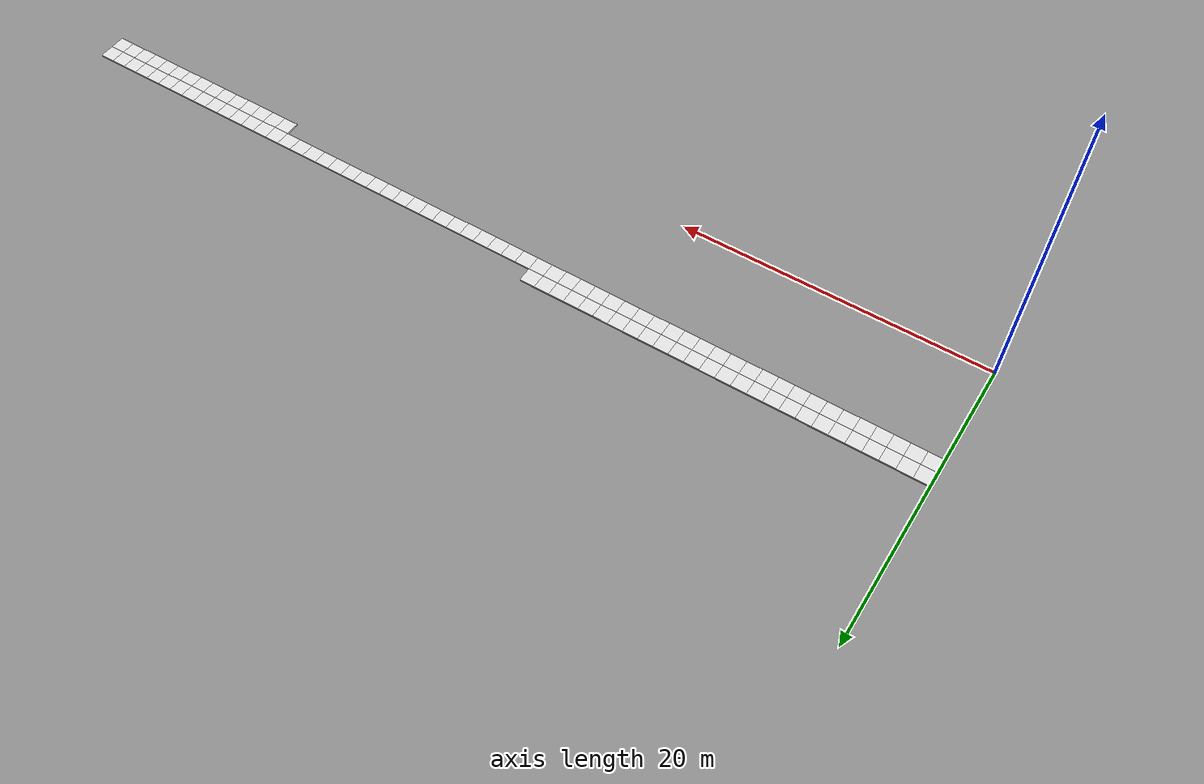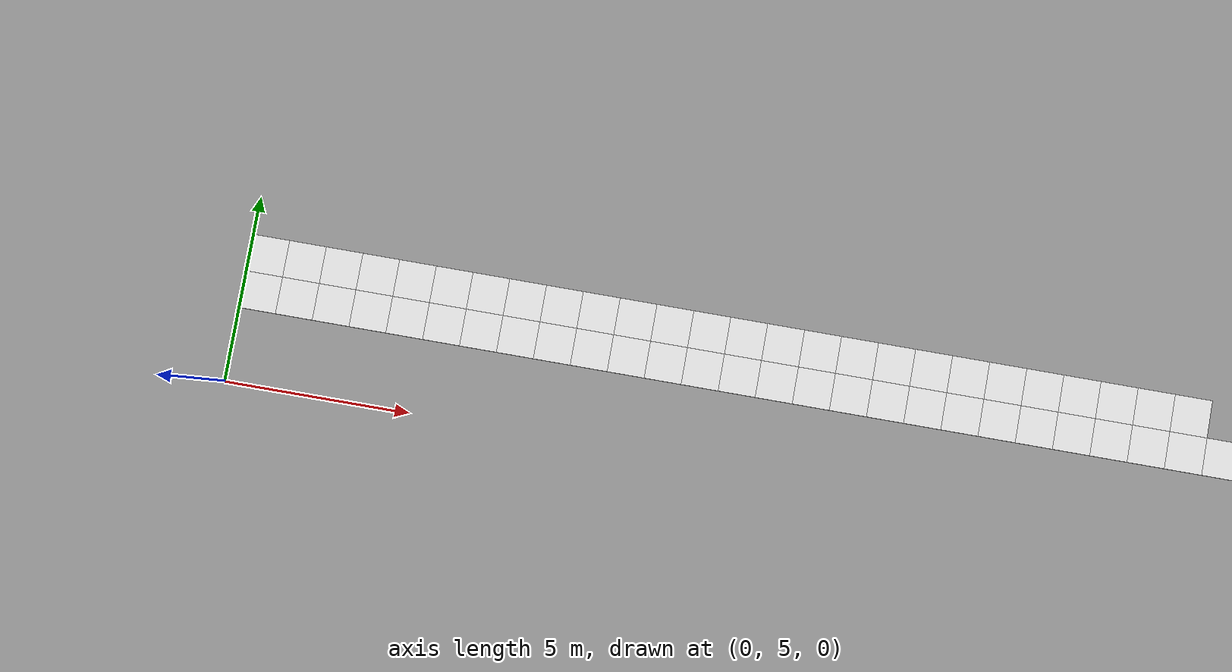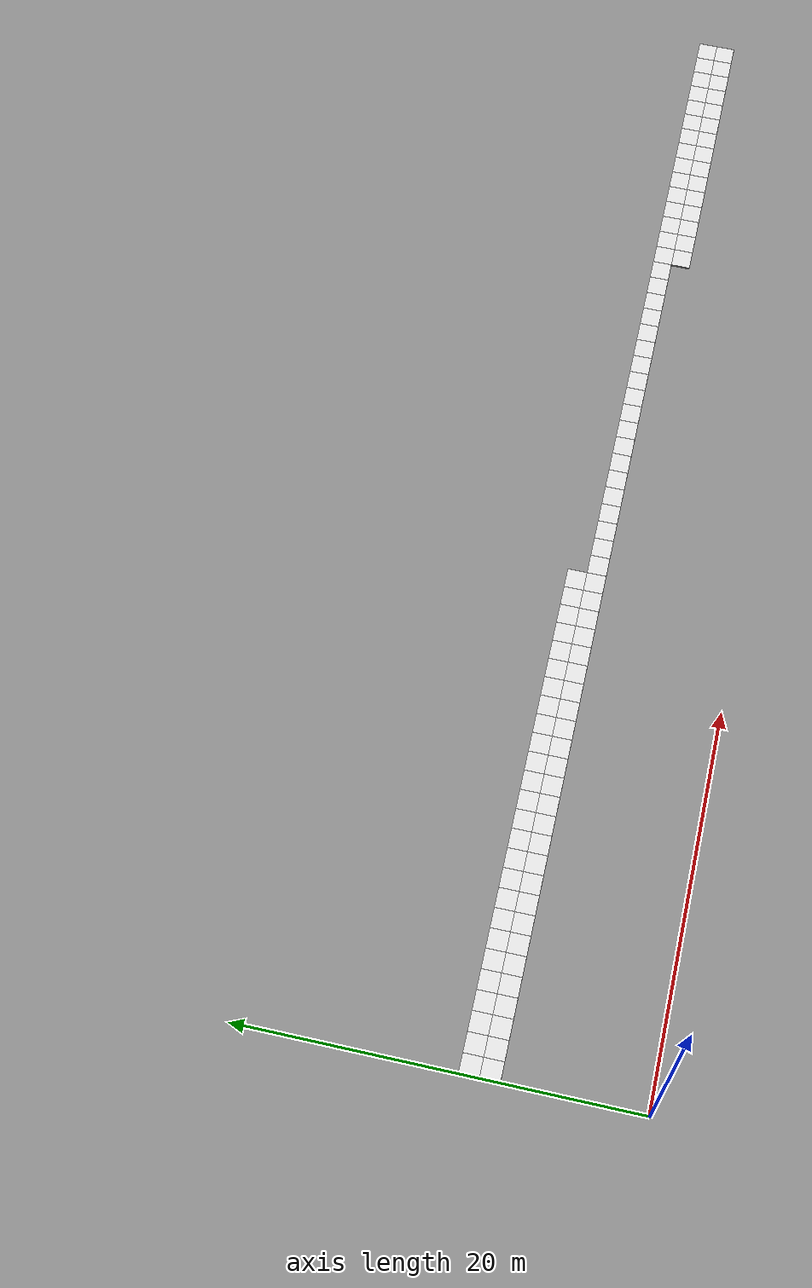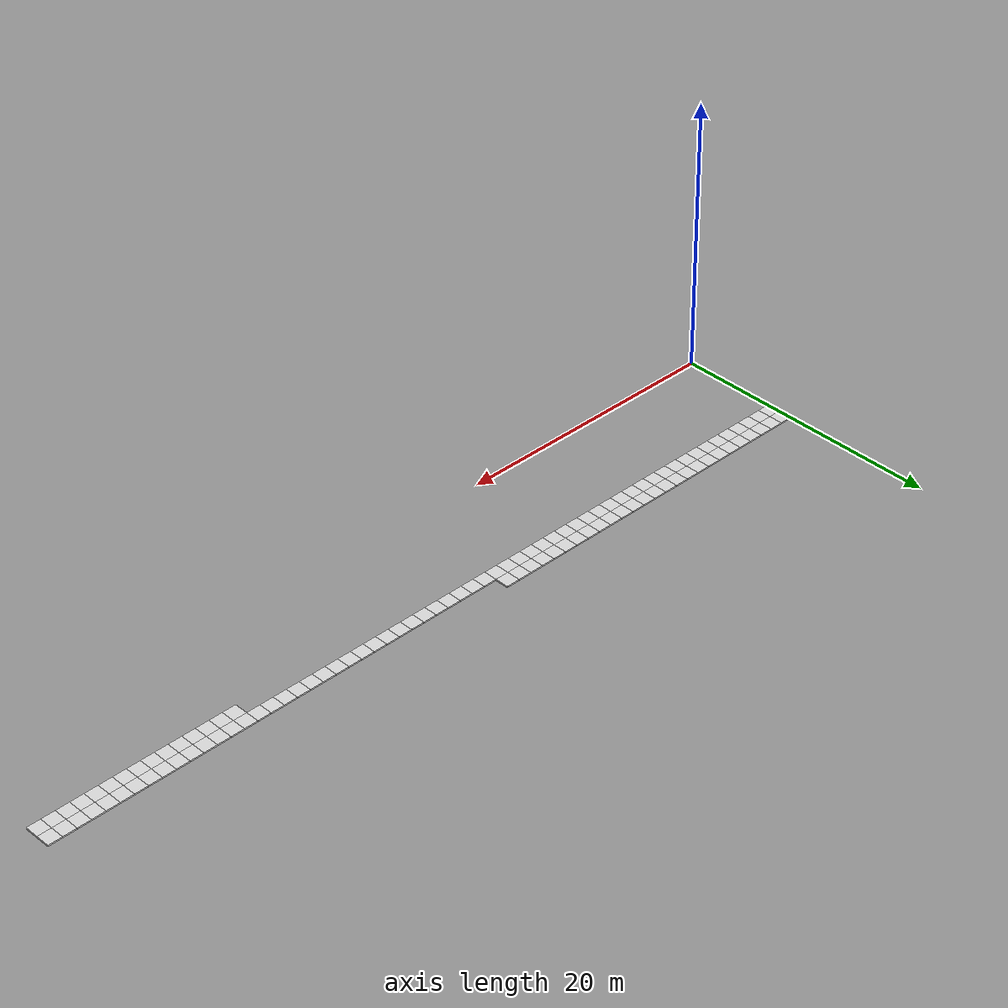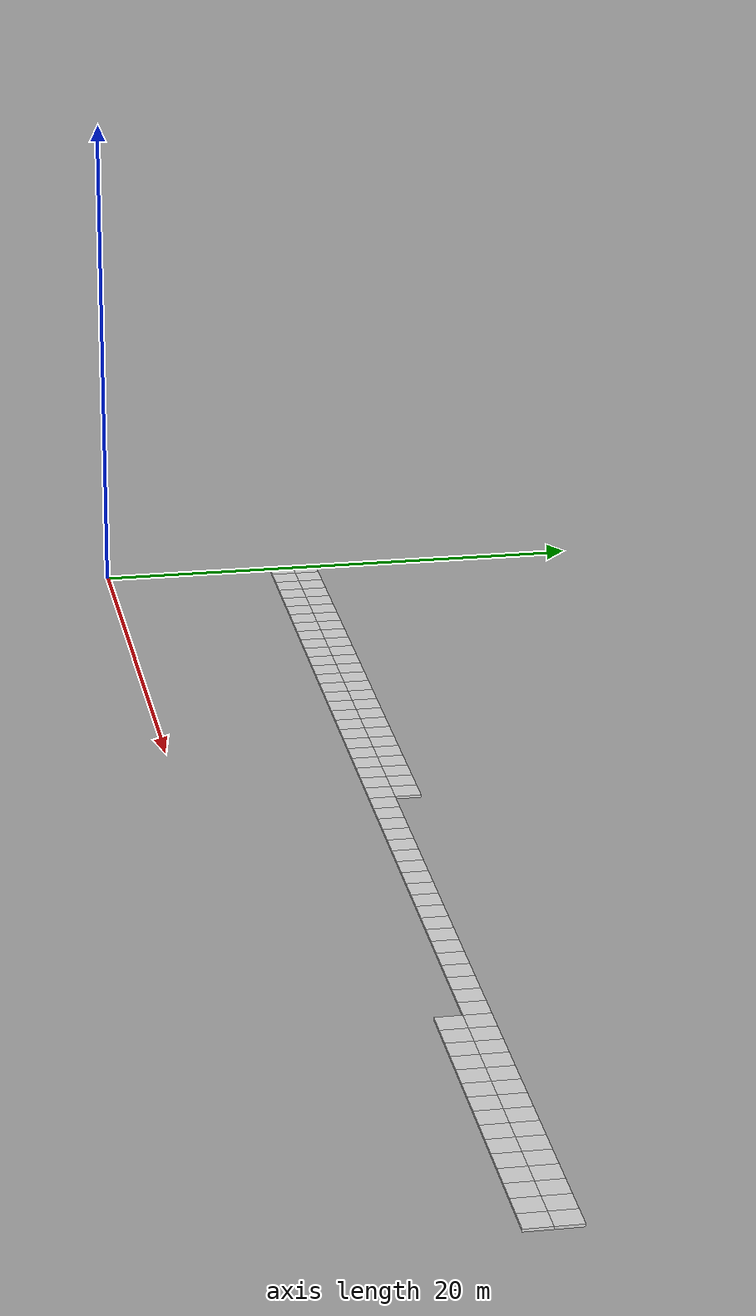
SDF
<sdf version="1.6">
 <world name="grid_world">
  <model name="cell_45_6">
   <static>true</static>
   <link name="link">
    <collision name="collision"><geometry><box><size>1 1 0.1</size></box></geometry></collision>
    <visual name="visual">
     <geometry><box><size>1 1 0.1</size></box></geometry>
     <material>
      <script><uri>file://media/materials/scripts/gazebo.material</uri><name>Gazebo/White</name></script>
     </material>
    </visual>
    <pose>45.5 6.5 0.05 0 0 0</pose>
   </link>
  </model>
  <model name="cell_46_6">
   <static>true</static>
   <link name="link">
    <collision name="collision"><geometry><box><size>1 1 0.1</size></box></geometry></collision>
    <visual name="visual">
     <geometry><box><size>1 1 0.1</size></box></geometry>
     <material>
      <script><uri>file://media/materials/scripts/gazebo.material</uri><name>Gazebo/White</name></script>
     </material>
    </visual>
    <pose>46.5 6.5 0.05 0 0 0</pose>
   </link>
  </model>
  <model name="cell_47_6">
   <static>true</static>
   <link name="link">
    <collision name="collision"><geometry><box><size>1 1 0.1</size></box></geometry></collision>
    <visual name="visual">
     <geometry><box><size>1 1 0.1</size></box></geometry>
     <material>
      <script><uri>file://media/materials/scripts/gazebo.material</uri><name>Gazebo/White</name></script>
     </material>
    </visual>
    <pose>47.5 6.5 0.05 0 0 0</pose>
   </link>
  </model>
  <model name="cell_48_6">
   <static>true</static>
   <link name="link">
    <collision name="collision"><geometry><box><size>1 1 0.1</size></box></geometry></collision>
    <visual name="visual">
     <geometry><box><size>1 1 0.1</size></box></geometry>
     <material>
      <script><uri>file://media/materials/scripts/gazebo.material</uri><name>Gazebo/White</name></script>
     </material>
    </visual>
    <pose>48.5 6.5 0.05 0 0 0</pose>
   </link>
  </model>
  <model name="cell_49_6">
   <static>true</static>
   <link name="link">
    <collision name="collision"><geometry><box><size>1 1 0.1</size></box></geometry></collision>
    <visual name="visual">
     <geometry><box><size>1 1 0.1</size></box></geometry>
     <material>
      <script><uri>file://media/materials/scripts/gazebo.material</uri><name>Gazebo/White</name></script>
     </material>
    </visual>
    <pose>49.5 6.5 0.05 0 0 0</pose>
   </link>
  </model>
  <model name="cell_50_6">
   <static>true</static>
   <link name="link">
    <collision name="collision"><geometry><box><size>1 1 0.1</size></box></geometry></collision>
    <visual name="visual">
     <geometry><box><size>1 1 0.1</size></box></geometry>
     <material>
      <script><uri>file://media/materials/scripts/gazebo.material</uri><name>Gazebo/White</name></script>
     </material>
    </visual>
    <pose>50.5 6.5 0.05 0 0 0</pose>
   </link>
  </model>
  <model name="cell_51_6">
   <static>true</static>
   <link name="link">
    <collision name="collision"><geometry><box><size>1 1 0.1</size></box></geometry></collision>
    <visual name="visual">
     <geometry><box><size>1 1 0.1</size></box></geometry>
     <material>
      <script><uri>file://media/materials/scripts/gazebo.material</uri><name>Gazebo/White</name></script>
     </material>
    </visual>
    <pose>51.5 6.5 0.05 0 0 0</pose>
   </link>
  </model>
  <model name="cell_52_6">
   <static>true</static>
   <link name="link">
    <collision name="collision"><geometry><box><size>1 1 0.1</size></box></geometry></collision>
    <visual name="visual">
     <geometry><box><size>1 1 0.1</size></box></geometry>
     <material>
      <script><uri>file://media/materials/scripts/gazebo.material</uri><name>Gazebo/White</name></script>
     </material>
    </visual>
    <pose>52.5 6.5 0.05 0 0 0</pose>
   </link>
  </model>
  <model name="cell_53_6">
   <static>true</static>
   <link name="link">
    <collision name="collision"><geometry><box><size>1 1 0.1</size></box></geometry></collision>
    <visual name="visual">
     <geometry><box><size>1 1 0.1</size></box></geometry>
     <material>
      <script><uri>file://media/materials/scripts/gazebo.material</uri><name>Gazebo/White</name></script>
     </material>
    </visual>
    <pose>53.5 6.5 0.05 0 0 0</pose>
   </link>
  </model>
  <model name="cell_54_6">
   <static>true</static>
   <link name="link">
    <collision name="collision"><geometry><box><size>1 1 0.1</size></box></geometry></collision>
    <visual name="visual">
     <geometry><box><size>1 1 0.1</size></box></geometry>
     <material>
      <script><uri>file://media/materials/scripts/gazebo.material</uri><name>Gazebo/White</name></script>
     </material>
    </visual>
    <pose>54.5 6.5 0.05 0 0 0</pose>
   </link>
  </model>
  <model name="cell_55_6">
   <static>true</static>
   <link name="link">
    <collision name="collision"><geometry><box><size>1 1 0.1</size></box></geometry></collision>
    <visual name="visual">
     <geometry><box><size>1 1 0.1</size></box></geometry>
     <material>
      <script><uri>file://media/materials/scripts/gazebo.material</uri><name>Gazebo/White</name></script>
     </material>
    </visual>
    <pose>55.5 6.5 0.05 0 0 0</pose>
   </link>
  </model>
  <model name="cell_56_6">
   <static>true</static>
   <link name="link">
    <collision name="collision"><geometry><box><size>1 1 0.1</size></box></geometry></collision>
    <visual name="visual">
     <geometry><box><size>1 1 0.1</size></box></geometry>
     <material>
      <script><uri>file://media/materials/scripts/gazebo.material</uri><name>Gazebo/White</name></script>
     </material>
    </visual>
    <pose>56.5 6.5 0.05 0 0 0</pose>
   </link>
  </model>
  <model name="cell_57_6">
   <static>true</static>
   <link name="link">
    <collision name="collision"><geometry><box><size>1 1 0.1</size></box></geometry></collision>
    <visual name="visual">
     <geometry><box><size>1 1 0.1</size></box></geometry>
     <material>
      <script><uri>file://media/materials/scripts/gazebo.material</uri><name>Gazebo/White</name></script>
     </material>
    </visual>
    <pose>57.5 6.5 0.05 0 0 0</pose>
   </link>
  </model>
  <model name="cell_58_6">
   <static>true</static>
   <link name="link">
    <collision name="collision"><geometry><box><size>1 1 0.1</size></box></geometry></collision>
    <visual name="visual">
     <geometry><box><size>1 1 0.1</size></box></geometry>
     <material>
      <script><uri>file://media/materials/scripts/gazebo.material</uri><name>Gazebo/White</name></script>
     </material>
    </visual>
    <pose>58.5 6.5 0.05 0 0 0</pose>
   </link>
  </model>
  <model name="cell_59_6">
   <static>true</static>
   <link name="link">
    <collision name="collision"><geometry><box><size>1 1 0.1</size></box></geometry></collision>
    <visual name="visual">
     <geometry><box><size>1 1 0.1</size></box></geometry>
     <material>
      <script><uri>file://media/materials/scripts/gazebo.material</uri><name>Gazebo/White</name></script>
     </material>
    </visual>
    <pose>59.5 6.5 0.05 0 0 0</pose>
   </link>
  </model>
  <model name="cell_0_7">
   <static>true</static>
   <link name="link">
    <collision name="collision"><geometry><box><size>1 1 0.1</size></box></geometry></collision>
    <visual name="visual">
     <geometry><box><size>1 1 0.1</size></box></geometry>
     <material>
      <script><uri>file://media/materials/scripts/gazebo.material</uri><name>Gazebo/White</name></script>
     </material>
    </visual>
    <pose>0.5 7.5 0.05 0 0 0</pose>
   </link>
  </model>
  <model name="cell_1_7">
   <static>true</static>
   <link name="link">
    <collision name="collision"><geometry><box><size>1 1 0.1</size></box></geometry></collision>
    <visual name="visual">
     <geometry><box><size>1 1 0.1</size></box></geometry>
     <material>
      <script><uri>file://media/materials/scripts/gazebo.material</uri><name>Gazebo/White</name></script>
     </material>
    </visual>
    <pose>1.5 7.5 0.05 0 0 0</pose>
   </link>
  </model>
  <model name="cell_2_7">
   <static>true</static>
   <link name="link">
    <collision name="collision"><geometry><box><size>1 1 0.1</size></box></geometry></collision>
    <visual name="visual">
     <geometry><box><size>1 1 0.1</size></box></geometry>
     <material>
      <script><uri>file://media/materials/scripts/gazebo.material</uri><name>Gazebo/White</name></script>
     </material>
    </visual>
    <pose>2.5 7.5 0.05 0 0 0</pose>
   </link>
  </model>
  <model name="cell_3_7">
   <static>true</static>
   <link name="link">
    <collision name="collision"><geometry><box><size>1 1 0.1</size></box></geometry></collision>
    <visual name="visual">
     <geometry><box><size>1 1 0.1</size></box></geometry>
     <material>
      <script><uri>file://media/materials/scripts/gazebo.material</uri><name>Gazebo/White</name></script>
     </material>
    </visual>
    <pose>3.5 7.5 0.05 0 0 0</pose>
   </link>
  </model>
  <model name="cell_4_7">
   <static>true</static>
   <link name="link">
    <collision name="collision"><geometry><box><size>1 1 0.1</size></box></geometry></collision>
    <visual name="visual">
     <geometry><box><size>1 1 0.1</size></box></geometry>
     <material>
      <script><uri>file://media/materials/scripts/gazebo.material</uri><name>Gazebo/White</name></script>
     </material>
    </visual>
    <pose>4.5 7.5 0.05 0 0 0</pose>
   </link>
  </model>
  <model name="cell_5_7">
   <static>true</static>
   <link name="link">
    <collision name="collision"><geometry><box><size>1 1 0.1</size></box></geometry></collision>
    <visual name="visual">
     <geometry><box><size>1 1 0.1</size></box></geometry>
     <material>
      <script><uri>file://media/materials/scripts/gazebo.material</uri><name>Gazebo/White</name></script>
     </material>
    </visual>
    <pose>5.5 7.5 0.05 0 0 0</pose>
   </link>
  </model>
  <model name="cell_6_7">
   <static>true</static>
   <link name="link">
    <collision name="collision"><geometry><box><size>1 1 0.1</size></box></geometry></collision>
    <visual name="visual">
     <geometry><box><size>1 1 0.1</size></box></geometry>
     <material>
      <script><uri>file://media/materials/scripts/gazebo.material</uri><name>Gazebo/White</name></script>
     </material>
    </visual>
    <pose>6.5 7.5 0.05 0 0 0</pose>
   </link>
  </model>
  <model name="cell_7_7">
   <static>true</static>
   <link name="link">
    <collision name="collision"><geometry><box><size>1 1 0.1</size></box></geometry></collision>
    <visual name="visual">
     <geometry><box><size>1 1 0.1</size></box></geometry>
     <material>
      <script><uri>file://media/materials/scripts/gazebo.material</uri><name>Gazebo/White</name></script>
     </material>
    </visual>
    <pose>7.5 7.5 0.05 0 0 0</pose>
   </link>
  </model>
  <model name="cell_8_7">
   <static>true</static>
   <link name="link">
    <collision name="collision"><geometry><box><size>1 1 0.1</size></box></geometry></collision>
    <visual name="visual">
     <geometry><box><size>1 1 0.1</size></box></geometry>
     <material>
      <script><uri>file://media/materials/scripts/gazebo.material</uri><name>Gazebo/White</name></script>
     </material>
    </visual>
    <pose>8.5 7.5 0.05 0 0 0</pose>
   </link>
  </model>
  <model name="cell_9_7">
   <static>true</static>
   <link name="link">
    <collision name="collision"><geometry><box><size>1 1 0.1</size></box></geometry></collision>
    <visual name="visual">
     <geometry><box><size>1 1 0.1</size></box></geometry>
     <material>
      <script><uri>file://media/materials/scripts/gazebo.material</uri><name>Gazebo/White</name></script>
     </material>
    </visual>
    <pose>9.5 7.5 0.05 0 0 0</pose>
   </link>
  </model>
  <model name="cell_10_7">
   <static>true</static>
   <link name="link">
    <collision name="collision"><geometry><box><size>1 1 0.1</size></box></geometry></collision>
    <visual name="visual">
     <geometry><box><size>1 1 0.1</size></box></geometry>
     <material>
      <script><uri>file://media/materials/scripts/gazebo.material</uri><name>Gazebo/White</name></script>
     </material>
    </visual>
    <pose>10.5 7.5 0.05 0 0 0</pose>
   </link>
  </model>
  <model name="cell_11_7">
   <static>true</static>
   <link name="link">
    <collision name="collision"><geometry><box><size>1 1 0.1</size></box></geometry></collision>
    <visual name="visual">
     <geometry><box><size>1 1 0.1</size></box></geometry>
     <material>
      <script><uri>file://media/materials/scripts/gazebo.material</uri><name>Gazebo/White</name></script>
     </material>
    </visual>
    <pose>11.5 7.5 0.05 0 0 0</pose>
   </link>
  </model>
  <model name="cell_12_7">
   <static>true</static>
   <link name="link">
    <collision name="collision"><geometry><box><size>1 1 0.1</size></box></geometry></collision>
    <visual name="visual">
     <geometry><box><size>1 1 0.1</size></box></geometry>
     <material>
      <script><uri>file://media/materials/scripts/gazebo.material</uri><name>Gazebo/White</name></script>
     </material>
    </visual>
    <pose>12.5 7.5 0.05 0 0 0</pose>
   </link>
  </model>
  <model name="cell_13_7">
   <static>true</static>
   <link name="link">
    <collision name="collision"><geometry><box><size>1 1 0.1</size></box></geometry></collision>
    <visual name="visual">
     <geometry><box><size>1 1 0.1</size></box></geometry>
     <material>
      <script><uri>file://media/materials/scripts/gazebo.material</uri><name>Gazebo/White</name></script>
     </material>
    </visual>
    <pose>13.5 7.5 0.05 0 0 0</pose>
   </link>
  </model>
  <model name="cell_14_7">
   <static>true</static>
   <link name="link">
    <collision name="collision"><geometry><box><size>1 1 0.1</size></box></geometry></collision>
    <visual name="visual">
     <geometry><box><size>1 1 0.1</size></box></geometry>
     <material>
      <script><uri>file://media/materials/scripts/gazebo.material</uri><name>Gazebo/White</name></script>
     </material>
    </visual>
    <pose>14.5 7.5 0.05 0 0 0</pose>
   </link>
  </model>
  <model name="cell_15_7">
   <static>true</static>
   <link name="link">
    <collision name="collision"><geometry><box><size>1 1 0.1</size></box></geometry></collision>
    <visual name="visual">
     <geometry><box><size>1 1 0.1</size></box></geometry>
     <material>
      <script><uri>file://media/materials/scripts/gazebo.material</uri><name>Gazebo/White</name></script>
     </material>
    </visual>
    <pose>15.5 7.5 0.05 0 0 0</pose>
   </link>
  </model>
  <model name="cell_16_7">
   <static>true</static>
   <link name="link">
    <collision name="collision"><geometry><box><size>1 1 0.1</size></box></geometry></collision>
    <visual name="visual">
     <geometry><box><size>1 1 0.1</size></box></geometry>
     <material>
      <script><uri>file://media/materials/scripts/gazebo.material</uri><name>Gazebo/White</name></script>
     </material>
    </visual>
    <pose>16.5 7.5 0.05 0 0 0</pose>
   </link>
  </model>
  <model name="cell_17_7">
   <static>true</static>
   <link name="link">
    <collision name="collision"><geometry><box><size>1 1 0.1</size></box></geometry></collision>
    <visual name="visual">
     <geometry><box><size>1 1 0.1</size></box></geometry>
     <material>
      <script><uri>file://media/materials/scripts/gazebo.material</uri><name>Gazebo/White</name></script>
     </material>
    </visual>
    <pose>17.5 7.5 0.05 0 0 0</pose>
   </link>
  </model>
  <model name="cell_18_7">
   <static>true</static>
   <link name="link">
    <collision name="collision"><geometry><box><size>1 1 0.1</size></box></geometry></collision>
    <visual name="visual">
     <geometry><box><size>1 1 0.1</size></box></geometry>
     <material>
      <script><uri>file://media/materials/scripts/gazebo.material</uri><name>Gazebo/White</name></script>
     </material>
    </visual>
    <pose>18.5 7.5 0.05 0 0 0</pose>
   </link>
  </model>
  <model name="cell_19_7">
   <static>true</static>
   <link name="link">
    <collision name="collision"><geometry><box><size>1 1 0.1</size></box></geometry></collision>
    <visual name="visual">
     <geometry><box><size>1 1 0.1</size></box></geometry>
     <material>
      <script><uri>file://media/materials/scripts/gazebo.material</uri><name>Gazebo/White</name></script>
     </material>
    </visual>
    <pose>19.5 7.5 0.05 0 0 0</pose>
   </link>
  </model>
  <model name="cell_20_7">
   <static>true</static>
   <link name="link">
    <collision name="collision"><geometry><box><size>1 1 0.1</size></box></geometry></collision>
    <visual name="visual">
     <geometry><box><size>1 1 0.1</size></box></geometry>
     <material>
      <script><uri>file://media/materials/scripts/gazebo.material</uri><name>Gazebo/White</name></script>
     </material>
    </visual>
    <pose>20.5 7.5 0.05 0 0 0</pose>
   </link>
  </model>
  <model name="cell_21_7">
   <static>true</static>
   <link name="link">
    <collision name="collision"><geometry><box><size>1 1 0.1</size></box></geometry></collision>
    <visual name="visual">
     <geometry><box><size>1 1 0.1</size></box></geometry>
     <material>
      <script><uri>file://media/materials/scripts/gazebo.material</uri><name>Gazebo/White</name></script>
     </material>
    </visual>
    <pose>21.5 7.5 0.05 0 0 0</pose>
   </link>
  </model>
  <model name="cell_22_7">
   <static>true</static>
   <link name="link">
    <collision name="collision"><geometry><box><size>1 1 0.1</size></box></geometry></collision>
    <visual name="visual">
     <geometry><box><size>1 1 0.1</size></box></geometry>
     <material>
      <script><uri>file://media/materials/scripts/gazebo.material</uri><name>Gazebo/White</name></script>
     </material>
    </visual>
    <pose>22.5 7.5 0.05 0 0 0</pose>
   </link>
  </model>
  <model name="cell_23_7">
   <static>true</static>
   <link name="link">
    <collision name="collision"><geometry><box><size>1 1 0.1</size></box></geometry></collision>
    <visual name="visual">
     <geometry><box><size>1 1 0.1</size></box></geometry>
     <material>
      <script><uri>file://media/materials/scripts/gazebo.material</uri><name>Gazebo/White</name></script>
     </material>
    </visual>
    <pose>23.5 7.5 0.05 0 0 0</pose>
   </link>
  </model>
  <model name="cell_24_7">
   <static>true</static>
   <link name="link">
    <collision name="collision"><geometry><box><size>1 1 0.1</size></box></geometry></collision>
    <visual name="visual">
     <geometry><box><size>1 1 0.1</size></box></geometry>
     <material>
      <script><uri>file://media/materials/scripts/gazebo.material</uri><name>Gazebo/White</name></script>
     </material>
    </visual>
    <pose>24.5 7.5 0.05 0 0 0</pose>
   </link>
  </model>
  <model name="cell_25_7">
   <static>true</static>
   <link name="link">
    <collision name="collision"><geometry><box><size>1 1 0.1</size></box></geometry></collision>
    <visual name="visual">
     <geometry><box><size>1 1 0.1</size></box></geometry>
     <material>
      <script><uri>file://media/materials/scripts/gazebo.material</uri><name>Gazebo/White</name></script>
     </material>
    </visual>
    <pose>25.5 7.5 0.05 0 0 0</pose>
   </link>
  </model>
  <model name="cell_26_7">
   <static>true</static>
   <link name="link">
    <collision name="collision"><geometry><box><size>1 1 0.1</size></box></geometry></collision>
    <visual name="visual">
     <geometry><box><size>1 1 0.1</size></box></geometry>
     <material>
      <script><uri>file://media/materials/scripts/gazebo.material</uri><name>Gazebo/White</name></script>
     </material>
    </visual>
    <pose>26.5 7.5 0.05 0 0 0</pose>
   </link>
  </model>
  <model name="cell_27_7">
   <static>true</static>
   <link name="link">
    <collision name="collision"><geometry><box><size>1 1 0.1</size></box></geometry></collision>
    <visual name="visual">
     <geometry><box><size>1 1 0.1</size></box></geometry>
     <material>
      <script><uri>file://media/materials/scripts/gazebo.material</uri><name>Gazebo/White</name></script>
     </material>
    </visual>
    <pose>27.5 7.5 0.05 0 0 0</pose>
   </link>
  </model>
  <model name="cell_28_7">
   <static>true</static>
   <link name="link">
    <collision name="collision"><geometry><box><size>1 1 0.1</size></box></geometry></collision>
    <visual name="visual">
     <geometry><box><size>1 1 0.1</size></box></geometry>
     <material>
      <script><uri>file://media/materials/scripts/gazebo.material</uri><name>Gazebo/White</name></script>
     </material>
    </visual>
    <pose>28.5 7.5 0.05 0 0 0</pose>
   </link>
  </model>
  <model name="cell_29_7">
   <static>true</static>
   <link name="link">
    <collision name="collision"><geometry><box><size>1 1 0.1</size></box></geometry></collision>
    <visual name="visual">
     <geometry><box><size>1 1 0.1</size></box></geometry>
     <material>
      <script><uri>file://media/materials/scripts/gazebo.material</uri><name>Gazebo/White</name></script>
     </material>
    </visual>
    <pose>29.5 7.5 0.05 0 0 0</pose>
   </link>
  </model>
  <model name="cell_30_7">
   <static>true</static>
   <link name="link">
    <collision name="collision"><geometry><box><size>1 1 0.1</size></box></geometry></collision>
    <visual name="visual">
     <geometry><box><size>1 1 0.1</size></box></geometry>
     <material>
      <script><uri>file://media/materials/scripts/gazebo.material</uri><name>Gazebo/White</name></script>
     </material>
    </visual>
    <pose>30.5 7.5 0.05 0 0 0</pose>
   </link>
  </model>
  <model name="cell_31_7">
   <static>true</static>
   <link name="link">
    <collision name="collision"><geometry><box><size>1 1 0.1</size></box></geometry></collision>
    <visual name="visual">
     <geometry><box><size>1 1 0.1</size></box></geometry>
     <material>
      <script><uri>file://media/materials/scripts/gazebo.material</uri><name>Gazebo/White</name></script>
     </material>
    </visual>
    <pose>31.5 7.5 0.05 0 0 0</pose>
   </link>
  </model>
  <model name="cell_32_7">
   <static>true</static>
   <link name="link">
    <collision name="collision"><geometry><box><size>1 1 0.1</size></box></geometry></collision>
    <visual name="visual">
     <geometry><box><size>1 1 0.1</size></box></geometry>
     <material>
      <script><uri>file://media/materials/scripts/gazebo.material</uri><name>Gazebo/White</name></script>
     </material>
    </visual>
    <pose>32.5 7.5 0.05 0 0 0</pose>
   </link>
  </model>
  <model name="cell_33_7">
   <static>true</static>
   <link name="link">
    <collision name="collision"><geometry><box><size>1 1 0.1</size></box></geometry></collision>
    <visual name="visual">
     <geometry><box><size>1 1 0.1</size></box></geometry>
     <material>
      <script><uri>file://media/materials/scripts/gazebo.material</uri><name>Gazebo/White</name></script>
     </material>
    </visual>
    <pose>33.5 7.5 0.05 0 0 0</pose>
   </link>
  </model>
  <model name="cell_34_7">
   <static>true</static>
   <link name="link">
    <collision name="collision"><geometry><box><size>1 1 0.1</size></box></geometry></collision>
    <visual name="visual">
     <geometry><box><size>1 1 0.1</size></box></geometry>
     <material>
      <script><uri>file://media/materials/scripts/gazebo.material</uri><name>Gazebo/White</name></script>
     </material>
    </visual>
    <pose>34.5 7.5 0.05 0 0 0</pose>
   </link>
  </model>
  <model name="cell_35_7">
   <static>true</static>
   <link name="link">
    <collision name="collision"><geometry><box><size>1 1 0.1</size></box></geometry></collision>
    <visual name="visual">
     <geometry><box><size>1 1 0.1</size></box></geometry>
     <material>
      <script><uri>file://media/materials/scripts/gazebo.material</uri><name>Gazebo/White</name></script>
     </material>
    </visual>
    <pose>35.5 7.5 0.05 0 0 0</pose>
   </link>
  </model>
  <model name="cell_36_7">
   <static>true</static>
   <link name="link">
    <collision name="collision"><geometry><box><size>1 1 0.1</size></box></geometry></collision>
    <visual name="visual">
     <geometry><box><size>1 1 0.1</size></box></geometry>
     <material>
      <script><uri>file://media/materials/scripts/gazebo.material</uri><name>Gazebo/White</name></script>
     </material>
    </visual>
    <pose>36.5 7.5 0.05 0 0 0</pose>
   </link>
  </model>
  <model name="cell_37_7">
   <static>true</static>
   <link name="link">
    <collision name="collision"><geometry><box><size>1 1 0.1</size></box></geometry></collision>
    <visual name="visual">
     <geometry><box><size>1 1 0.1</size></box></geometry>
     <material>
      <script><uri>file://media/materials/scripts/gazebo.material</uri><name>Gazebo/White</name></script>
     </material>
    </visual>
    <pose>37.5 7.5 0.05 0 0 0</pose>
   </link>
  </model>
  <model name="cell_38_7">
   <static>true</static>
   <link name="link">
    <collision name="collision"><geometry><box><size>1 1 0.1</size></box></geometry></collision>
    <visual name="visual">
     <geometry><box><size>1 1 0.1</size></box></geometry>
     <material>
      <script><uri>file://media/materials/scripts/gazebo.material</uri><name>Gazebo/White</name></script>
     </material>
    </visual>
    <pose>38.5 7.5 0.05 0 0 0</pose>
   </link>
  </model>
  <model name="cell_39_7">
   <static>true</static>
   <link name="link">
    <collision name="collision"><geometry><box><size>1 1 0.1</size></box></geometry></collision>
    <visual name="visual">
     <geometry><box><size>1 1 0.1</size></box></geometry>
     <material>
      <script><uri>file://media/materials/scripts/gazebo.material</uri><name>Gazebo/White</name></script>
     </material>
    </visual>
    <pose>39.5 7.5 0.05 0 0 0</pose>
   </link>
  </model>
  <model name="cell_40_7">
   <static>true</static>
   <link name="link">
    <collision name="collision"><geometry><box><size>1 1 0.1</size></box></geometry></collision>
    <visual name="visual">
     <geometry><box><size>1 1 0.1</size></box></geometry>
     <material>
      <script><uri>file://media/materials/scripts/gazebo.material</uri><name>Gazebo/White</name></script>
     </material>
    </visual>
    <pose>40.5 7.5 0.05 0 0 0</pose>
   </link>
  </model>
  <model name="cell_41_7">
   <static>true</static>
   <link name="link">
    <collision name="collision"><geometry><box><size>1 1 0.1</size></box></geometry></collision>
    <visual name="visual">
     <geometry><box><size>1 1 0.1</size></box></geometry>
     <material>
      <script><uri>file://media/materials/scripts/gazebo.material</uri><name>Gazebo/White</name></script>
     </material>
    </visual>
    <pose>41.5 7.5 0.05 0 0 0</pose>
   </link>
  </model>
  <model name="cell_42_7">
   <static>true</static>
   <link name="link">
    <collision name="collision"><geometry><box><size>1 1 0.1</size></box></geometry></collision>
    <visual name="visual">
     <geometry><box><size>1 1 0.1</size></box></geometry>
     <material>
      <script><uri>file://media/materials/scripts/gazebo.material</uri><name>Gazebo/White</name></script>
     </material>
    </visual>
    <pose>42.5 7.5 0.05 0 0 0</pose>
   </link>
  </model>
  <model name="cell_43_7">
   <static>true</static>
   <link name="link">
    <collision name="collision"><geometry><box><size>1 1 0.1</size></box></geometry></collision>
    <visual name="visual">
     <geometry><box><size>1 1 0.1</size></box></geometry>
     <material>
      <script><uri>file://media/materials/scripts/gazebo.material</uri><name>Gazebo/White</name></script>
     </material>
    </visual>
    <pose>43.5 7.5 0.05 0 0 0</pose>
   </link>
  </model>
  <model name="cell_44_7">
   <static>true</static>
   <link name="link">
    <collision name="collision"><geometry><box><size>1 1 0.1</size></box></geometry></collision>
    <visual name="visual">
     <geometry><box><size>1 1 0.1</size></box></geometry>
     <material>
      <script><uri>file://media/materials/scripts/gazebo.material</uri><name>Gazebo/White</name></script>
     </material>
    </visual>
    <pose>44.5 7.5 0.05 0 0 0</pose>
   </link>
  </model>
  <model name="cell_45_7">
   <static>true</static>
   <link name="link">
    <collision name="collision"><geometry><box><size>1 1 0.1</size></box></geometry></collision>
    <visual name="visual">
     <geometry><box><size>1 1 0.1</size></box></geometry>
     <material>
      <script><uri>file://media/materials/scripts/gazebo.material</uri><name>Gazebo/White</name></script>
     </material>
    </visual>
    <pose>45.5 7.5 0.05 0 0 0</pose>
   </link>
  </model>
  <model name="cell_46_7">
   <static>true</static>
   <link name="link">
    <collision name="collision"><geometry><box><size>1 1 0.1</size></box></geometry></collision>
    <visual name="visual">
     <geometry><box><size>1 1 0.1</size></box></geometry>
     <material>
      <script><uri>file://media/materials/scripts/gazebo.material</uri><name>Gazebo/White</name></script>
     </material>
    </visual>
    <pose>46.5 7.5 0.05 0 0 0</pose>
   </link>
  </model>
  <model name="cell_47_7">
   <static>true</static>
   <link name="link">
    <collision name="collision"><geometry><box><size>1 1 0.1</size></box></geometry></collision>
    <visual name="visual">
     <geometry><box><size>1 1 0.1</size></box></geometry>
     <material>
      <script><uri>file://media/materials/scripts/gazebo.material</uri><name>Gazebo/White</name></script>
     </material>
    </visual>
    <pose>47.5 7.5 0.05 0 0 0</pose>
   </link>
  </model>
  <model name="cell_48_7">
   <static>true</static>
   <link name="link">
    <collision name="collision"><geometry><box><size>1 1 0.1</size></box></geometry></collision>
    <visual name="visual">
     <geometry><box><size>1 1 0.1</size></box></geometry>
     <material>
      <script><uri>file://media/materials/scripts/gazebo.material</uri><name>Gazebo/White</name></script>
     </material>
    </visual>
    <pose>48.5 7.5 0.05 0 0 0</pose>
   </link>
  </model>
  <model name="cell_49_7">
   <static>true</static>
   <link name="link">
    <collision name="collision"><geometry><box><size>1 1 0.1</size></box></geometry></collision>
    <visual name="visual">
     <geometry><box><size>1 1 0.1</size></box></geometry>
     <material>
      <script><uri>file://media/materials/scripts/gazebo.material</uri><name>Gazebo/White</name></script>
     </material>
    </visual>
    <pose>49.5 7.5 0.05 0 0 0</pose>
   </link>
  </model>
  <model name="cell_50_7">
   <static>true</static>
   <link name="link">
    <collision name="collision"><geometry><box><size>1 1 0.1</size></box></geometry></collision>
    <visual name="visual">
     <geometry><box><size>1 1 0.1</size></box></geometry>
     <material>
      <script><uri>file://media/materials/scripts/gazebo.material</uri><name>Gazebo/White</name></script>
     </material>
    </visual>
    <pose>50.5 7.5 0.05 0 0 0</pose>
   </link>
  </model>
  <model name="cell_51_7">
   <static>true</static>
   <link name="link">
    <collision name="collision"><geometry><box><size>1 1 0.1</size></box></geometry></collision>
    <visual name="visual">
     <geometry><box><size>1 1 0.1</size></box></geometry>
     <material>
      <script><uri>file://media/materials/scripts/gazebo.material</uri><name>Gazebo/White</name></script>
     </material>
    </visual>
    <pose>51.5 7.5 0.05 0 0 0</pose>
   </link>
  </model>
  <model name="cell_52_7">
   <static>true</static>
   <link name="link">
    <collision name="collision"><geometry><box><size>1 1 0.1</size></box></geometry></collision>
    <visual name="visual">
     <geometry><box><size>1 1 0.1</size></box></geometry>
     <material>
      <script><uri>file://media/materials/scripts/gazebo.material</uri><name>Gazebo/White</name></script>
     </material>
    </visual>
    <pose>52.5 7.5 0.05 0 0 0</pose>
   </link>
  </model>
  <model name="cell_53_7">
   <static>true</static>
   <link name="link">
    <collision name="collision"><geometry><box><size>1 1 0.1</size></box></geometry></collision>
    <visual name="visual">
     <geometry><box><size>1 1 0.1</size></box></geometry>
     <material>
      <script><uri>file://media/materials/scripts/gazebo.material</uri><name>Gazebo/White</name></script>
     </material>
    </visual>
    <pose>53.5 7.5 0.05 0 0 0</pose>
   </link>
  </model>
  <model name="cell_54_7">
   <static>true</static>
   <link name="link">
    <collision name="collision"><geometry><box><size>1 1 0.1</size></box></geometry></collision>
    <visual name="visual">
     <geometry><box><size>1 1 0.1</size></box></geometry>
     <material>
      <script><uri>file://media/materials/scripts/gazebo.material</uri><name>Gazebo/White</name></script>
     </material>
    </visual>
    <pose>54.5 7.5 0.05 0 0 0</pose>
   </link>
  </model>
  <model name="cell_55_7">
   <static>true</static>
   <link name="link">
    <collision name="collision"><geometry><box><size>1 1 0.1</size></box></geometry></collision>
    <visual name="visual">
     <geometry><box><size>1 1 0.1</size></box></geometry>
     <material>
      <script><uri>file://media/materials/scripts/gazebo.material</uri><name>Gazebo/White</name></script>
     </material>
    </visual>
    <pose>55.5 7.5 0.05 0 0 0</pose>
   </link>
  </model>
  <model name="cell_56_7">
   <static>true</static>
   <link name="link">
    <collision name="collision"><geometry><box><size>1 1 0.1</size></box></geometry></collision>
    <visual name="visual">
     <geometry><box><size>1 1 0.1</size></box></geometry>
     <material>
      <script><uri>file://media/materials/scripts/gazebo.material</uri><name>Gazebo/White</name></script>
     </material>
    </visual>
    <pose>56.5 7.5 0.05 0 0 0</pose>
   </link>
  </model>
  <model name="cell_57_7">
   <static>true</static>
   <link name="link">
    <collision name="collision"><geometry><box><size>1 1 0.1</size></box></geometry></collision>
    <visual name="visual">
     <geometry><box><size>1 1 0.1</size></box></geometry>
     <material>
      <script><uri>file://media/materials/scripts/gazebo.material</uri><name>Gazebo/White</name></script>
     </material>
    </visual>
    <pose>57.5 7.5 0.05 0 0 0</pose>
   </link>
  </model>
  <model name="cell_58_7">
   <static>true</static>
   <link name="link">
    <collision name="collision"><geometry><box><size>1 1 0.1</size></box></geometry></collision>
    <visual name="visual">
     <geometry><box><size>1 1 0.1</size></box></geometry>
     <material>
      <script><uri>file://media/materials/scripts/gazebo.material</uri><name>Gazebo/White</name></script>
     </material>
    </visual>
    <pose>58.5 7.5 0.05 0 0 0</pose>
   </link>
  </model>
  <model name="cell_59_7">
   <static>true</static>
   <link name="link">
    <collision name="collision"><geometry><box><size>1 1 0.1</size></box></geometry></collision>
    <visual name="visual">
     <geometry><box><size>1 1 0.1</size></box></geometry>
     <material>
      <script><uri>file://media/materials/scripts/gazebo.material</uri><name>Gazebo/White</name></script>
     </material>
    </visual>
    <pose>59.5 7.5 0.05 0 0 0</pose>
   </link>
  </model>
  <model name="cell_0_8">
   <static>true</static>
   <link name="link">
    <collision name="collision"><geometry><box><size>1 1 0.1</size></box></geometry></collision>
    <visual name="visual">
     <geometry><box><size>1 1 0.1</size></box></geometry>
     <material>
      <script><uri>file://media/materials/scripts/gazebo.material</uri><name>Gazebo/White</name></script>
     </material>
    </visual>
    <pose>0.5 8.5 0.05 0 0 0</pose>
   </link>
  </model>
  <model name="cell_1_8">
   <static>true</static>
   <link name="link">
    <collision name="collision"><geometry><box><size>1 1 0.1</size></box></geometry></collision>
    <visual name="visual">
     <geometry><box><size>1 1 0.1</size></box></geometry>
     <material>
      <script><uri>file://media/materials/scripts/gazebo.material</uri><name>Gazebo/White</name></script>
     </material>
    </visual>
    <pose>1.5 8.5 0.05 0 0 0</pose>
   </link>
  </model>
  <model name="cell_2_8">
   <static>true</static>
   <link name="link">
    <collision name="collision"><geometry><box><size>1 1 0.1</size></box></geometry></collision>
    <visual name="visual">
     <geometry><box><size>1 1 0.1</size></box></geometry>
     <material>
      <script><uri>file://media/materials/scripts/gazebo.material</uri><name>Gazebo/White</name></script>
     </material>
    </visual>
    <pose>2.5 8.5 0.05 0 0 0</pose>
   </link>
  </model>
  <model name="cell_3_8">
   <static>true</static>
   <link name="link">
    <collision name="collision"><geometry><box><size>1 1 0.1</size></box></geometry></collision>
    <visual name="visual">
     <geometry><box><size>1 1 0.1</size></box></geometry>
     <material>
      <script><uri>file://media/materials/scripts/gazebo.material</uri><name>Gazebo/White</name></script>
     </material>
    </visual>
    <pose>3.5 8.5 0.05 0 0 0</pose>
   </link>
  </model>
  <model name="cell_4_8">
   <static>true</static>
   <link name="link">
    <collision name="collision"><geometry><box><size>1 1 0.1</size></box></geometry></collision>
    <visual name="visual">
     <geometry><box><size>1 1 0.1</size></box></geometry>
     <material>
      <script><uri>file://media/materials/scripts/gazebo.material</uri><name>Gazebo/White</name></script>
     </material>
    </visual>
    <pose>4.5 8.5 0.05 0 0 0</pose>
   </link>
  </model>
  <model name="cell_5_8">
   <static>true</static>
   <link name="link">
    <collision name="collision"><geometry><box><size>1 1 0.1</size></box></geometry></collision>
    <visual name="visual">
     <geometry><box><size>1 1 0.1</size></box></geometry>
     <material>
      <script><uri>file://media/materials/scripts/gazebo.material</uri><name>Gazebo/White</name></script>
     </material>
    </visual>
    <pose>5.5 8.5 0.05 0 0 0</pose>
   </link>
  </model>
  <model name="cell_6_8">
   <static>true</static>
   <link name="link">
    <collision name="collision"><geometry><box><size>1 1 0.1</size></box></geometry></collision>
    <visual name="visual">
     <geometry><box><size>1 1 0.1</size></box></geometry>
     <material>
      <script><uri>file://media/materials/scripts/gazebo.material</uri><name>Gazebo/White</name></script>
     </material>
    </visual>
    <pose>6.5 8.5 0.05 0 0 0</pose>
   </link>
  </model>
  <model name="cell_7_8">
   <static>true</static>
   <link name="link">
    <collision name="collision"><geometry><box><size>1 1 0.1</size></box></geometry></collision>
    <visual name="visual">
     <geometry><box><size>1 1 0.1</size></box></geometry>
     <material>
      <script><uri>file://media/materials/scripts/gazebo.material</uri><name>Gazebo/White</name></script>
     </material>
    </visual>
    <pose>7.5 8.5 0.05 0 0 0</pose>
   </link>
  </model>
  <model name="cell_8_8">
   <static>true</static>
   <link name="link">
    <collision name="collision"><geometry><box><size>1 1 0.1</size></box></geometry></collision>
    <visual name="visual">
     <geometry><box><size>1 1 0.1</size></box></geometry>
     <material>
      <script><uri>file://media/materials/scripts/gazebo.material</uri><name>Gazebo/White</name></script>
     </material>
    </visual>
    <pose>8.5 8.5 0.05 0 0 0</pose>
   </link>
  </model>
  <model name="cell_9_8">
   <static>true</static>
   <link name="link">
    <collision name="collision"><geometry><box><size>1 1 0.1</size></box></geometry></collision>
    <visual name="visual">
     <geometry><box><size>1 1 0.1</size></box></geometry>
     <material>
      <script><uri>file://media/materials/scripts/gazebo.material</uri><name>Gazebo/White</name></script>
     </material>
    </visual>
    <pose>9.5 8.5 0.05 0 0 0</pose>
   </link>
  </model>
  <model name="cell_10_8">
   <static>true</static>
   <link name="link">
    <collision name="collision"><geometry><box><size>1 1 0.1</size></box></geometry></collision>
    <visual name="visual">
     <geometry><box><size>1 1 0.1</size></box></geometry>
     <material>
      <script><uri>file://media/materials/scripts/gazebo.material</uri><name>Gazebo/White</name></script>
     </material>
    </visual>
    <pose>10.5 8.5 0.05 0 0 0</pose>
   </link>
  </model>
  <model name="cell_11_8">
   <static>true</static>
   <link name="link">
    <collision name="collision"><geometry><box><size>1 1 0.1</size></box></geometry></collision>
    <visual name="visual">
     <geometry><box><size>1 1 0.1</size></box></geometry>
     <material>
      <script><uri>file://media/materials/scripts/gazebo.material</uri><name>Gazebo/White</name></script>
     </material>
    </visual>
    <pose>11.5 8.5 0.05 0 0 0</pose>
   </link>
  </model>
  <model name="cell_12_8">
   <static>true</static>
   <link name="link">
    <collision name="collision"><geometry><box><size>1 1 0.1</size></box></geometry></collision>
    <visual name="visual">
     <geometry><box><size>1 1 0.1</size></box></geometry>
     <material>
      <script><uri>file://media/materials/scripts/gazebo.material</uri><name>Gazebo/White</name></script>
     </material>
    </visual>
    <pose>12.5 8.5 0.05 0 0 0</pose>
   </link>
  </model>
  <model name="cell_13_8">
   <static>true</static>
   <link name="link">
    <collision name="collision"><geometry><box><size>1 1 0.1</size></box></geometry></collision>
    <visual name="visual">
     <geometry><box><size>1 1 0.1</size></box></geometry>
     <material>
      <script><uri>file://media/materials/scripts/gazebo.material</uri><name>Gazebo/White</name></script>
     </material>
    </visual>
    <pose>13.5 8.5 0.05 0 0 0</pose>
   </link>
  </model>
  <model name="cell_14_8">
   <static>true</static>
   <link name="link">
    <collision name="collision"><geometry><box><size>1 1 0.1</size></box></geometry></collision>
    <visual name="visual">
     <geometry><box><size>1 1 0.1</size></box></geometry>
     <material>
      <script><uri>file://media/materials/scripts/gazebo.material</uri><name>Gazebo/White</name></script>
     </material>
    </visual>
    <pose>14.5 8.5 0.05 0 0 0</pose>
   </link>
  </model>
  <model name="cell_15_8">
   <static>true</static>
   <link name="link">
    <collision name="collision"><geometry><box><size>1 1 0.1</size></box></geometry></collision>
    <visual name="visual">
     <geometry><box><size>1 1 0.1</size></box></geometry>
     <material>
      <script><uri>file://media/materials/scripts/gazebo.material</uri><name>Gazebo/White</name></script>
     </material>
    </visual>
    <pose>15.5 8.5 0.05 0 0 0</pose>
   </link>
  </model>
  <model name="cell_16_8">
   <static>true</static>
   <link name="link">
    <collision name="collision"><geometry><box><size>1 1 0.1</size></box></geometry></collision>
    <visual name="visual">
     <geometry><box><size>1 1 0.1</size></box></geometry>
     <material>
      <script><uri>file://media/materials/scripts/gazebo.material</uri><name>Gazebo/White</name></script>
     </material>
    </visual>
    <pose>16.5 8.5 0.05 0 0 0</pose>
   </link>
  </model>
  <model name="cell_17_8">
   <static>true</static>
   <link name="link">
    <collision name="collision"><geometry><box><size>1 1 0.1</size></box></geometry></collision>
    <visual name="visual">
     <geometry><box><size>1 1 0.1</size></box></geometry>
     <material>
      <script><uri>file://media/materials/scripts/gazebo.material</uri><name>Gazebo/White</name></script>
     </material>
    </visual>
    <pose>17.5 8.5 0.05 0 0 0</pose>
   </link>
  </model>
  <model name="cell_18_8">
   <static>true</static>
   <link name="link">
    <collision name="collision"><geometry><box><size>1 1 0.1</size></box></geometry></collision>
    <visual name="visual">
     <geometry><box><size>1 1 0.1</size></box></geometry>
     <material>
      <script><uri>file://media/materials/scripts/gazebo.material</uri><name>Gazebo/White</name></script>
     </material>
    </visual>
    <pose>18.5 8.5 0.05 0 0 0</pose>
   </link>
  </model>
  <model name="cell_19_8">
   <static>true</static>
   <link name="link">
    <collision name="collision"><geometry><box><size>1 1 0.1</size></box></geometry></collision>
    <visual name="visual">
     <geometry><box><size>1 1 0.1</size></box></geometry>
     <material>
      <script><uri>file://media/materials/scripts/gazebo.material</uri><name>Gazebo/White</name></script>
     </material>
    </visual>
    <pose>19.5 8.5 0.05 0 0 0</pose>
   </link>
  </model>
  <model name="cell_20_8">
   <static>true</static>
   <link name="link">
    <collision name="collision"><geometry><box><size>1 1 0.1</size></box></geometry></collision>
    <visual name="visual">
     <geometry><box><size>1 1 0.1</size></box></geometry>
     <material>
      <script><uri>file://media/materials/scripts/gazebo.material</uri><name>Gazebo/White</name></script>
     </material>
    </visual>
    <pose>20.5 8.5 0.05 0 0 0</pose>
   </link>
  </model>
  <model name="cell_21_8">
   <static>true</static>
   <link name="link">
    <collision name="collision"><geometry><box><size>1 1 0.1</size></box></geometry></collision>
    <visual name="visual">
     <geometry><box><size>1 1 0.1</size></box></geometry>
     <material>
      <script><uri>file://media/materials/scripts/gazebo.material</uri><name>Gazebo/White</name></script>
     </material>
    </visual>
    <pose>21.5 8.5 0.05 0 0 0</pose>
   </link>
  </model>
  <model name="cell_22_8">
   <static>true</static>
   <link name="link">
    <collision name="collision"><geometry><box><size>1 1 0.1</size></box></geometry></collision>
    <visual name="visual">
     <geometry><box><size>1 1 0.1</size></box></geometry>
     <material>
      <script><uri>file://media/materials/scripts/gazebo.material</uri><name>Gazebo/White</name></script>
     </material>
    </visual>
    <pose>22.5 8.5 0.05 0 0 0</pose>
   </link>
  </model>
  <model name="cell_23_8">
   <static>true</static>
   <link name="link">
    <collision name="collision"><geometry><box><size>1 1 0.1</size></box></geometry></collision>
    <visual name="visual">
     <geometry><box><size>1 1 0.1</size></box></geometry>
     <material>
      <script><uri>file://media/materials/scripts/gazebo.material</uri><name>Gazebo/White</name></script>
     </material>
    </visual>
    <pose>23.5 8.5 0.05 0 0 0</pose>
   </link>
  </model>
  <model name="cell_24_8">
   <static>true</static>
   <link name="link">
    <collision name="collision"><geometry><box><size>1 1 0.1</size></box></geometry></collision>
    <visual name="visual">
     <geometry><box><size>1 1 0.1</size></box></geometry>
     <material>
      <script><uri>file://media/materials/scripts/gazebo.material</uri><name>Gazebo/White</name></script>
     </material>
    </visual>
    <pose>24.5 8.5 0.05 0 0 0</pose>
   </link>
  </model>
  <model name="cell_25_8">
   <static>true</static>
   <link name="link">
    <collision name="collision"><geometry><box><size>1 1 0.1</size></box></geometry></collision>
    <visual name="visual">
     <geometry><box><size>1 1 0.1</size></box></geometry>
     <material>
      <script><uri>file://media/materials/scripts/gazebo.material</uri><name>Gazebo/White</name></script>
     </material>
    </visual>
    <pose>25.5 8.5 0.05 0 0 0</pose>
   </link>
  </model>
 </world>
</sdf>
